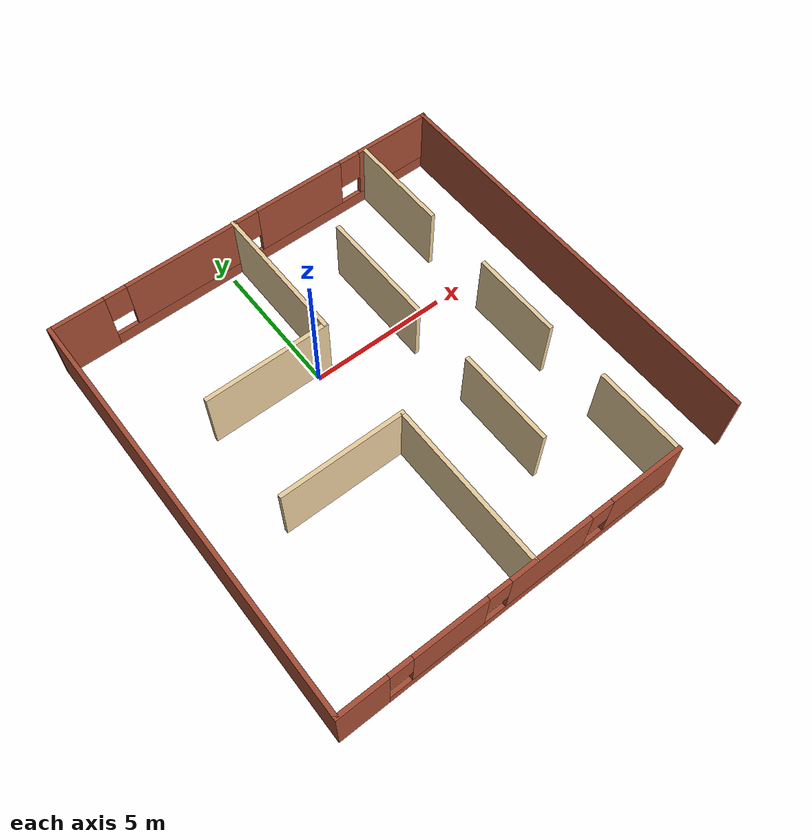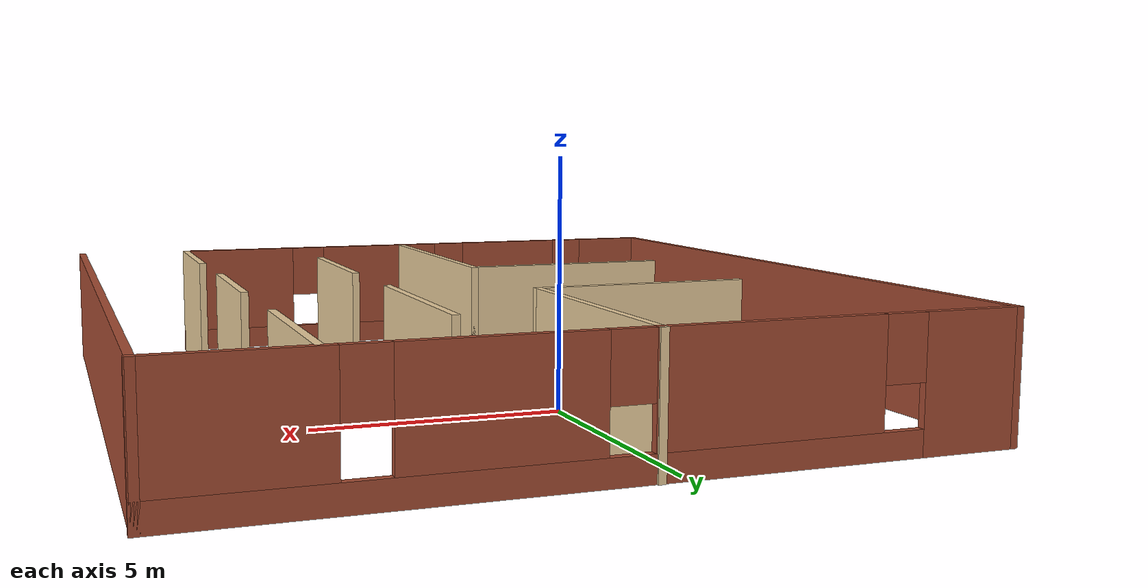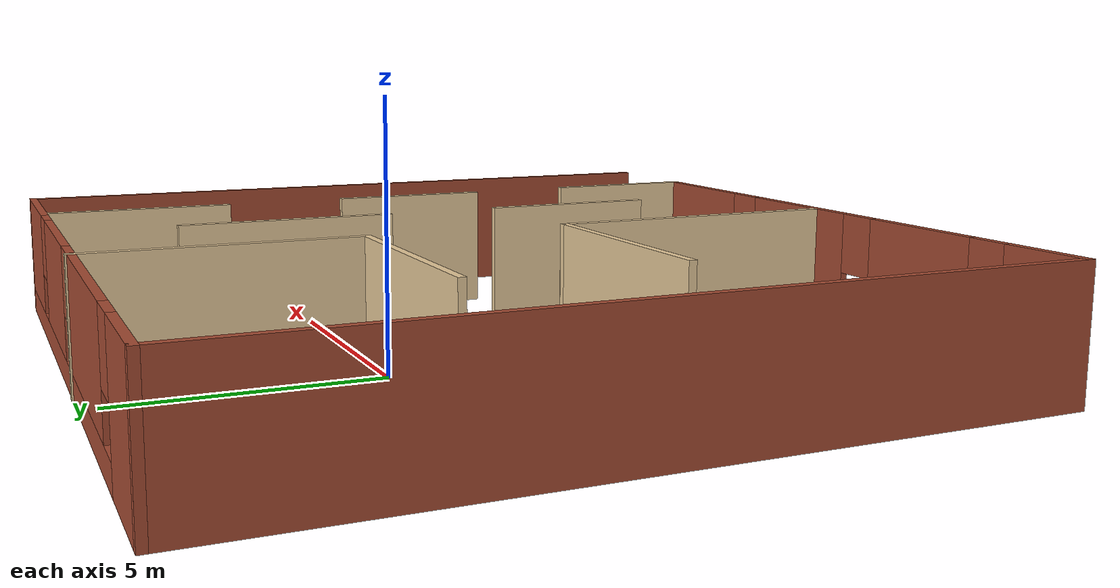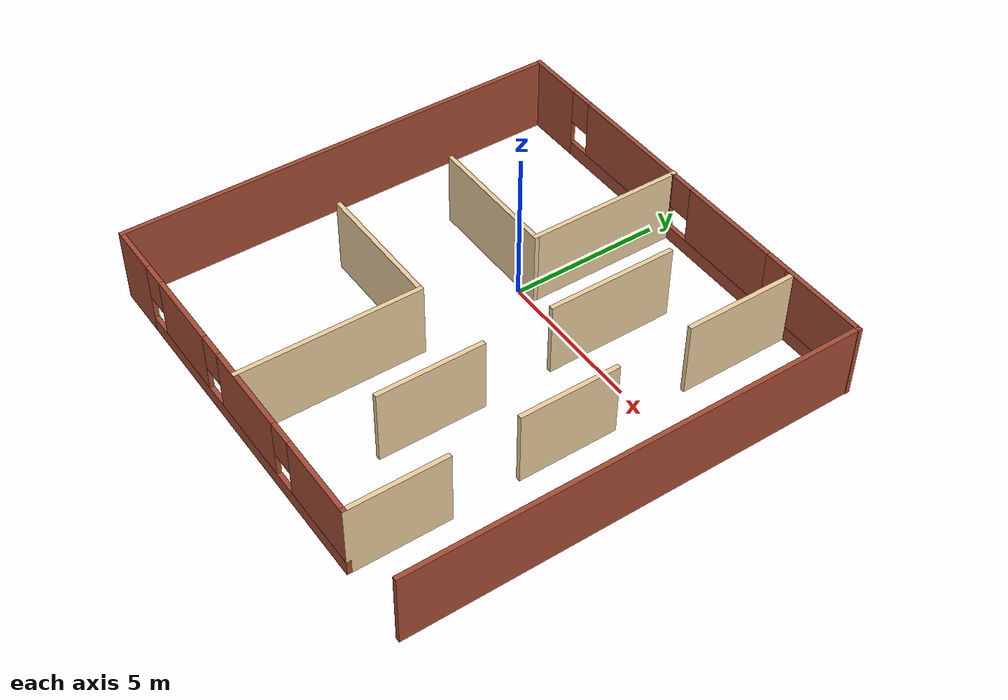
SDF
<?xml version='1.0'?>
<sdf version='1.7'>
  <model name='gMaze11'>
    <pose>1.11307 -2.15398 0 0 -0 0</pose>
    <link name='Wall_0'>
      <pose>0 7.40828 0 0 -0 0</pose>
      <visual name='Wall_0_Visual_0'>
        <pose>-6.50945 0 1.25 0 -0 0</pose>
        <geometry>
          <box>
            <size>1.98109 0.15 2.5</size>
          </box>
        </geometry>
        <material>
          <script>
            <uri>file://media/materials/scripts/gazebo.material</uri>
            <name>Gazebo/Bricks</name>
          </script>
          <ambient>1 1 1 1</ambient>
        </material>
        <meta>
          <layer>0</layer>
        </meta>
      </visual>
      <collision name='Wall_0_Collision_0'>
        <geometry>
          <box>
            <size>1.98109 0.15 2.5</size>
          </box>
        </geometry>
        <pose>-6.50945 0 1.25 0 -0 0</pose>
      </collision>
      <visual name='Wall_0_Visual_1'>
        <pose>0.990545 0 0.25 0 -0 0</pose>
        <geometry>
          <box>
            <size>13.0189 0.15 0.5</size>
          </box>
        </geometry>
        <material>
          <script>
            <uri>file://media/materials/scripts/gazebo.material</uri>
            <name>Gazebo/Bricks</name>
          </script>
          <ambient>1 1 1 1</ambient>
        </material>
        <meta>
          <layer>0</layer>
        </meta>
      </visual>
      <collision name='Wall_0_Collision_1'>
        <geometry>
          <box>
            <size>13.0189 0.15 0.5</size>
          </box>
        </geometry>
        <pose>0.990545 0 0.25 0 -0 0</pose>
      </collision>
      <visual name='Wall_0_Visual_2'>
        <pose>-2.60363 0 1.5 0 -0 0</pose>
        <geometry>
          <box>
            <size>4.23056 0.15 2</size>
          </box>
        </geometry>
        <material>
          <script>
            <uri>file://media/materials/scripts/gazebo.material</uri>
            <name>Gazebo/Bricks</name>
          </script>
          <ambient>1 1 1 1</ambient>
        </material>
        <meta>
          <layer>0</layer>
        </meta>
      </visual>
      <collision name='Wall_0_Collision_2'>
        <geometry>
          <box>
            <size>4.23056 0.15 2</size>
          </box>
        </geometry>
        <pose>-2.60363 0 1.5 0 -0 0</pose>
      </collision>
      <visual name='Wall_0_Visual_3'>
        <pose>2.02238 0 1.5 0 -0 0</pose>
        <geometry>
          <box>
            <size>3.42145 0.15 2</size>
          </box>
        </geometry>
        <material>
          <script>
            <uri>file://media/materials/scripts/gazebo.material</uri>
            <name>Gazebo/Bricks</name>
          </script>
          <ambient>1 1 1 1</ambient>
        </material>
        <meta>
          <layer>0</layer>
        </meta>
      </visual>
      <collision name='Wall_0_Collision_3'>
        <geometry>
          <box>
            <size>3.42145 0.15 2</size>
          </box>
        </geometry>
        <pose>2.02238 0 1.5 0 -0 0</pose>
      </collision>
      <visual name='Wall_0_Visual_4'>
        <pose>6.01655 0 1.5 0 -0 0</pose>
        <geometry>
          <box>
            <size>2.9669 0.15 2</size>
          </box>
        </geometry>
        <material>
          <script>
            <uri>file://media/materials/scripts/gazebo.material</uri>
            <name>Gazebo/Bricks</name>
          </script>
          <ambient>1 1 1 1</ambient>
        </material>
        <meta>
          <layer>0</layer>
        </meta>
      </visual>
      <collision name='Wall_0_Collision_4'>
        <geometry>
          <box>
            <size>2.9669 0.15 2</size>
          </box>
        </geometry>
        <pose>6.01655 0 1.5 0 -0 0</pose>
      </collision>
      <visual name='Wall_0_Visual_5'>
        <pose>-5.11891 0 1.9 0 -0 0</pose>
        <geometry>
          <box>
            <size>0.8 0.15 1.2</size>
          </box>
        </geometry>
        <material>
          <script>
            <uri>file://media/materials/scripts/gazebo.material</uri>
            <name>Gazebo/Bricks</name>
          </script>
          <ambient>1 1 1 1</ambient>
        </material>
        <meta>
          <layer>0</layer>
        </meta>
      </visual>
      <collision name='Wall_0_Collision_5'>
        <geometry>
          <box>
            <size>0.8 0.15 1.2</size>
          </box>
        </geometry>
        <pose>-5.11891 0 1.9 0 -0 0</pose>
      </collision>
      <visual name='Wall_0_Visual_6'>
        <pose>-0.088347 0 1.9 0 -0 0</pose>
        <geometry>
          <box>
            <size>0.8 0.15 1.2</size>
          </box>
        </geometry>
        <material>
          <script>
            <uri>file://media/materials/scripts/gazebo.material</uri>
            <name>Gazebo/Bricks</name>
          </script>
          <ambient>1 1 1 1</ambient>
        </material>
        <meta>
          <layer>0</layer>
        </meta>
      </visual>
      <collision name='Wall_0_Collision_6'>
        <geometry>
          <box>
            <size>0.8 0.15 1.2</size>
          </box>
        </geometry>
        <pose>-0.088347 0 1.9 0 -0 0</pose>
      </collision>
      <visual name='Wall_0_Visual_7'>
        <pose>4.1331 0 1.9 0 -0 0</pose>
        <geometry>
          <box>
            <size>0.8 0.15 1.2</size>
          </box>
        </geometry>
        <material>
          <script>
            <uri>file://media/materials/scripts/gazebo.material</uri>
            <name>Gazebo/Bricks</name>
          </script>
          <ambient>1 1 1 1</ambient>
        </material>
        <meta>
          <layer>0</layer>
        </meta>
      </visual>
      <collision name='Wall_0_Collision_7'>
        <geometry>
          <box>
            <size>0.8 0.15 1.2</size>
          </box>
        </geometry>
        <pose>4.1331 0 1.9 0 -0 0</pose>
      </collision>
    </link>
    <link name='Wall_1'>
      <collision name='Wall_1_Collision'>
        <geometry>
          <box>
            <size>15 0.15 2.5</size>
          </box>
        </geometry>
        <pose>0 0 1.25 0 -0 0</pose>
      </collision>
      <visual name='Wall_1_Visual'>
        <pose>0 0 1.25 0 -0 0</pose>
        <geometry>
          <box>
            <size>15 0.15 2.5</size>
          </box>
        </geometry>
        <material>
          <script>
            <uri>file://media/materials/scripts/gazebo.material</uri>
            <name>Gazebo/Bricks</name>
          </script>
          <ambient>1 1 1 1</ambient>
        </material>
        <meta>
          <layer>0</layer>
        </meta>
      </visual>
      <pose>7.40489 -0.016718 0 0 -0 -1.5708</pose>
    </link>
    <link name='Wall_103'>
      <collision name='Wall_103_Collision'>
        <geometry>
          <box>
            <size>3.25 0.15 2.5</size>
          </box>
        </geometry>
        <pose>0 0 1.25 0 -0 0</pose>
      </collision>
      <visual name='Wall_103_Visual'>
        <pose>0 0 1.25 0 -0 0</pose>
        <geometry>
          <box>
            <size>3.25 0.15 2.5</size>
          </box>
        </geometry>
        <material>
          <script>
            <uri>file://media/materials/scripts/gazebo.material</uri>
            <name>Gazebo/Grey</name>
          </script>
          <ambient>0.921569 0.807843 0.615686 1</ambient>
        </material>
        <meta>
          <layer>0</layer>
        </meta>
      </visual>
      <pose>4.925 -5.89172 0 0 -0 1.5708</pose>
    </link>
    <link name='Wall_105'>
      <collision name='Wall_105_Collision'>
        <geometry>
          <box>
            <size>3.25 0.15 2.5</size>
          </box>
        </geometry>
        <pose>0 0 1.25 0 -0 0</pose>
      </collision>
      <visual name='Wall_105_Visual'>
        <pose>0 0 1.25 0 -0 0</pose>
        <geometry>
          <box>
            <size>3.25 0.15 2.5</size>
          </box>
        </geometry>
        <material>
          <script>
            <uri>file://media/materials/scripts/gazebo.material</uri>
            <name>Gazebo/Grey</name>
          </script>
          <ambient>0.921569 0.807843 0.615686 1</ambient>
        </material>
        <meta>
          <layer>0</layer>
        </meta>
      </visual>
      <pose>4.85408 -0.460662 0 0 -0 1.5708</pose>
    </link>
    <link name='Wall_107'>
      <collision name='Wall_107_Collision'>
        <geometry>
          <box>
            <size>3.75 0.15 2.5</size>
          </box>
        </geometry>
        <pose>0 0 1.25 0 -0 0</pose>
      </collision>
      <visual name='Wall_107_Visual'>
        <pose>0 0 1.25 0 -0 0</pose>
        <geometry>
          <box>
            <size>3.75 0.15 2.5</size>
          </box>
        </geometry>
        <material>
          <script>
            <uri>file://media/materials/scripts/gazebo.material</uri>
            <name>Gazebo/Grey</name>
          </script>
          <ambient>0.921569 0.807843 0.615686 1</ambient>
        </material>
        <meta>
          <layer>0</layer>
        </meta>
      </visual>
      <pose>4.7929 5.50971 0 0 -0 1.5708</pose>
    </link>
    <link name='Wall_109'>
      <collision name='Wall_109_Collision'>
        <geometry>
          <box>
            <size>4.25 0.15 2.5</size>
          </box>
        </geometry>
        <pose>0 0 1.25 0 -0 0</pose>
      </collision>
      <visual name='Wall_109_Visual'>
        <pose>0 0 1.25 0 -0 0</pose>
        <geometry>
          <box>
            <size>4.25 0.15 2.5</size>
          </box>
        </geometry>
        <material>
          <script>
            <uri>file://media/materials/scripts/gazebo.material</uri>
            <name>Gazebo/Grey</name>
          </script>
          <ambient>0.921569 0.807843 0.615686 1</ambient>
        </material>
        <meta>
          <layer>0</layer>
        </meta>
      </visual>
      <pose>2.03978 3.09745 0 0 -0 -1.5708</pose>
    </link>
    <link name='Wall_111'>
      <collision name='Wall_111_Collision'>
        <geometry>
          <box>
            <size>3.5 0.15 2.5</size>
          </box>
        </geometry>
        <pose>0 0 1.25 0 -0 0</pose>
      </collision>
      <visual name='Wall_111_Visual'>
        <pose>0 0 1.25 0 -0 0</pose>
        <geometry>
          <box>
            <size>3.5 0.15 2.5</size>
          </box>
        </geometry>
        <material>
          <script>
            <uri>file://media/materials/scripts/gazebo.material</uri>
            <name>Gazebo/Grey</name>
          </script>
          <ambient>0.921569 0.807843 0.615686 1</ambient>
        </material>
        <meta>
          <layer>0</layer>
        </meta>
      </visual>
      <pose>2.10096 -3.04327 0 0 -0 -1.5708</pose>
    </link>
    <link name='Wall_113'>
      <collision name='Wall_113_Collision'>
        <geometry>
          <box>
            <size>5.25 0.15 2.5</size>
          </box>
        </geometry>
        <pose>0 0 1.25 0 -0 0</pose>
      </collision>
      <visual name='Wall_113_Visual'>
        <pose>0 0 1.25 0 -0 0</pose>
        <geometry>
          <box>
            <size>5.25 0.15 2.5</size>
          </box>
        </geometry>
        <material>
          <script>
            <uri>file://media/materials/scripts/gazebo.material</uri>
            <name>Gazebo/Grey</name>
          </script>
          <ambient>0.921569 0.807843 0.615686 1</ambient>
        </material>
        <meta>
          <layer>0</layer>
        </meta>
      </visual>
      <pose>-0.590983 4.89172 0 0 -0 -1.5708</pose>
    </link>
    <link name='Wall_114'>
      <collision name='Wall_114_Collision'>
        <geometry>
          <box>
            <size>4.5 0.15 2.5</size>
          </box>
        </geometry>
        <pose>0 0 1.25 0 -0 0</pose>
      </collision>
      <visual name='Wall_114_Visual'>
        <pose>0 0 1.25 0 -0 0</pose>
        <geometry>
          <box>
            <size>4.5 0.15 2.5</size>
          </box>
        </geometry>
        <material>
          <script>
            <uri>file://media/materials/scripts/gazebo.material</uri>
            <name>Gazebo/Grey</name>
          </script>
          <ambient>0.921569 0.807843 0.615686 1</ambient>
        </material>
        <meta>
          <layer>0</layer>
        </meta>
      </visual>
      <pose>-2.76598 2.34172 0 0 -0 3.14159</pose>
    </link>
    <link name='Wall_116'>
      <collision name='Wall_116_Collision'>
        <geometry>
          <box>
            <size>4.5 0.15 2.5</size>
          </box>
        </geometry>
        <pose>0 0 1.25 0 -0 0</pose>
      </collision>
      <visual name='Wall_116_Visual'>
        <pose>0 0 1.25 0 -0 0</pose>
        <geometry>
          <box>
            <size>4.5 0.15 2.5</size>
          </box>
        </geometry>
        <material>
          <script>
            <uri>file://media/materials/scripts/gazebo.material</uri>
            <name>Gazebo/Grey</name>
          </script>
          <ambient>0.921569 0.807843 0.615686 1</ambient>
        </material>
        <meta>
          <layer>0</layer>
        </meta>
      </visual>
      <pose>-2.82098 -1.5824 0 0 -0 0</pose>
    </link>
    <link name='Wall_117'>
      <collision name='Wall_117_Collision'>
        <geometry>
          <box>
            <size>6 0.15 2.5</size>
          </box>
        </geometry>
        <pose>0 0 1.25 0 -0 0</pose>
      </collision>
      <visual name='Wall_117_Visual'>
        <pose>0 0 1.25 0 -0 0</pose>
        <geometry>
          <box>
            <size>6 0.15 2.5</size>
          </box>
        </geometry>
        <material>
          <script>
            <uri>file://media/materials/scripts/gazebo.material</uri>
            <name>Gazebo/Grey</name>
          </script>
          <ambient>0.921569 0.807843 0.615686 1</ambient>
        </material>
        <meta>
          <layer>0</layer>
        </meta>
      </visual>
      <pose>-0.645976 -4.5074 0 0 -0 -1.5708</pose>
    </link>
    <link name='Wall_3'>
      <collision name='Wall_3_Collision'>
        <geometry>
          <box>
            <size>15 0.15 2.5</size>
          </box>
        </geometry>
        <pose>0 0 1.25 0 -0 0</pose>
      </collision>
      <visual name='Wall_3_Visual'>
        <pose>0 0 1.25 0 -0 0</pose>
        <geometry>
          <box>
            <size>15 0.15 2.5</size>
          </box>
        </geometry>
        <material>
          <script>
            <uri>file://media/materials/scripts/gazebo.material</uri>
            <name>Gazebo/Bricks</name>
          </script>
          <ambient>1 1 1 1</ambient>
        </material>
        <meta>
          <layer>0</layer>
        </meta>
      </visual>
      <pose>-7.425 -0.016718 0 0 -0 -1.5708</pose>
    </link>
    <link name='Wall_4'>
      <pose>-1.25 -7.44172 0 0 -0 0</pose>
      <visual name='Wall_4_Visual_0'>
        <pose>-5.37558 0 1.25 0 -0 0</pose>
        <geometry>
          <box>
            <size>1.74884 0.15 2.5</size>
          </box>
        </geometry>
        <material>
          <script>
            <uri>file://media/materials/scripts/gazebo.material</uri>
            <name>Gazebo/Bricks</name>
          </script>
          <ambient>1 1 1 1</ambient>
        </material>
        <meta>
          <layer>0</layer>
        </meta>
      </visual>
      <collision name='Wall_4_Collision_0'>
        <geometry>
          <box>
            <size>1.74884 0.15 2.5</size>
          </box>
        </geometry>
        <pose>-5.37558 0 1.25 0 -0 0</pose>
      </collision>
      <visual name='Wall_4_Visual_1'>
        <pose>0.87442 0 0.25 0 -0 0</pose>
        <geometry>
          <box>
            <size>10.7512 0.15 0.5</size>
          </box>
        </geometry>
        <material>
          <script>
            <uri>file://media/materials/scripts/gazebo.material</uri>
            <name>Gazebo/Bricks</name>
          </script>
          <ambient>1 1 1 1</ambient>
        </material>
        <meta>
          <layer>0</layer>
        </meta>
      </visual>
      <collision name='Wall_4_Collision_1'>
        <geometry>
          <box>
            <size>10.7512 0.15 0.5</size>
          </box>
        </geometry>
        <pose>0.87442 0 0.25 0 -0 0</pose>
      </collision>
      <visual name='Wall_4_Visual_2'>
        <pose>-2.40199 0 1.5 0 -0 0</pose>
        <geometry>
          <box>
            <size>2.59834 0.15 2</size>
          </box>
        </geometry>
        <material>
          <script>
            <uri>file://media/materials/scripts/gazebo.material</uri>
            <name>Gazebo/Bricks</name>
          </script>
          <ambient>1 1 1 1</ambient>
        </material>
        <meta>
          <layer>0</layer>
        </meta>
      </visual>
      <collision name='Wall_4_Collision_2'>
        <geometry>
          <box>
            <size>2.59834 0.15 2</size>
          </box>
        </geometry>
        <pose>-2.40199 0 1.5 0 -0 0</pose>
      </collision>
      <visual name='Wall_4_Visual_3'>
        <pose>1.19683 0 1.5 0 -0 0</pose>
        <geometry>
          <box>
            <size>2.99931 0.15 2</size>
          </box>
        </geometry>
        <material>
          <script>
            <uri>file://media/materials/scripts/gazebo.material</uri>
            <name>Gazebo/Bricks</name>
          </script>
          <ambient>1 1 1 1</ambient>
        </material>
        <meta>
          <layer>0</layer>
        </meta>
      </visual>
      <collision name='Wall_4_Collision_3'>
        <geometry>
          <box>
            <size>2.99931 0.15 2</size>
          </box>
        </geometry>
        <pose>1.19683 0 1.5 0 -0 0</pose>
      </collision>
      <visual name='Wall_4_Visual_4'>
        <pose>4.87324 0 1.5 0 -0 0</pose>
        <geometry>
          <box>
            <size>2.75352 0.15 2</size>
          </box>
        </geometry>
        <material>
          <script>
            <uri>file://media/materials/scripts/gazebo.material</uri>
            <name>Gazebo/Bricks</name>
          </script>
          <ambient>1 1 1 1</ambient>
        </material>
        <meta>
          <layer>0</layer>
        </meta>
      </visual>
      <collision name='Wall_4_Collision_4'>
        <geometry>
          <box>
            <size>2.75352 0.15 2</size>
          </box>
        </geometry>
        <pose>4.87324 0 1.5 0 -0 0</pose>
      </collision>
      <visual name='Wall_4_Visual_5'>
        <pose>-4.10116 0 1.9 0 -0 0</pose>
        <geometry>
          <box>
            <size>0.8 0.15 1.2</size>
          </box>
        </geometry>
        <material>
          <script>
            <uri>file://media/materials/scripts/gazebo.material</uri>
            <name>Gazebo/Bricks</name>
          </script>
          <ambient>1 1 1 1</ambient>
        </material>
        <meta>
          <layer>0</layer>
        </meta>
      </visual>
      <collision name='Wall_4_Collision_5'>
        <geometry>
          <box>
            <size>0.8 0.15 1.2</size>
          </box>
        </geometry>
        <pose>-4.10116 0 1.9 0 -0 0</pose>
      </collision>
      <visual name='Wall_4_Visual_6'>
        <pose>-0.702821 0 1.9 0 -0 0</pose>
        <geometry>
          <box>
            <size>0.8 0.15 1.2</size>
          </box>
        </geometry>
        <material>
          <script>
            <uri>file://media/materials/scripts/gazebo.material</uri>
            <name>Gazebo/Bricks</name>
          </script>
          <ambient>1 1 1 1</ambient>
        </material>
        <meta>
          <layer>0</layer>
        </meta>
      </visual>
      <collision name='Wall_4_Collision_6'>
        <geometry>
          <box>
            <size>0.8 0.15 1.2</size>
          </box>
        </geometry>
        <pose>-0.702821 0 1.9 0 -0 0</pose>
      </collision>
      <visual name='Wall_4_Visual_7'>
        <pose>3.09648 0 1.9 0 -0 0</pose>
        <geometry>
          <box>
            <size>0.8 0.15 1.2</size>
          </box>
        </geometry>
        <material>
          <script>
            <uri>file://media/materials/scripts/gazebo.material</uri>
            <name>Gazebo/Bricks</name>
          </script>
          <ambient>1 1 1 1</ambient>
        </material>
        <meta>
          <layer>0</layer>
        </meta>
      </visual>
      <collision name='Wall_4_Collision_7'>
        <geometry>
          <box>
            <size>0.8 0.15 1.2</size>
          </box>
        </geometry>
        <pose>3.09648 0 1.9 0 -0 0</pose>
      </collision>
    </link>
    <static>1</static>
  </model>
</sdf>
